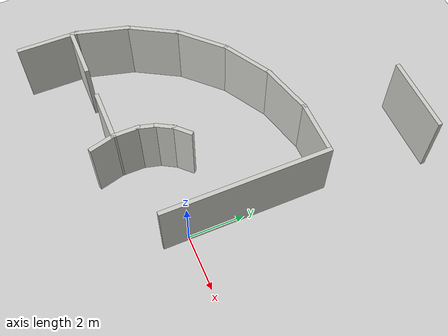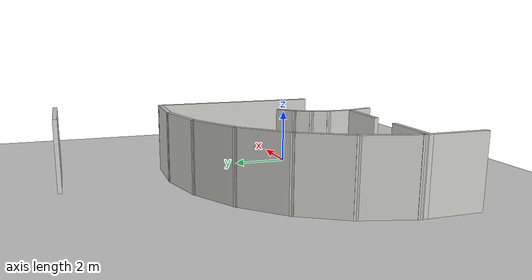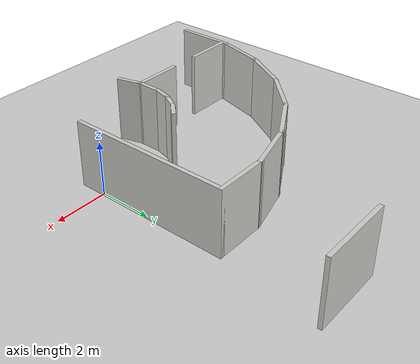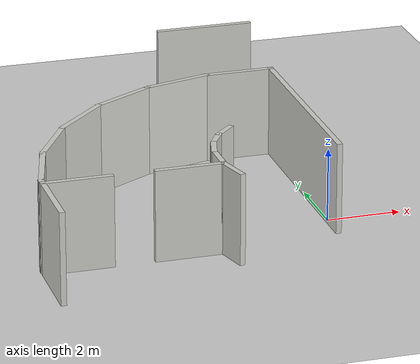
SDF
<sdf version="1.6">
 <world name="default">
  <model name="ground_plane">
   <static>1</static>
   <link name="link">
    <collision name="collision">
     <geometry><plane><normal>0 0 1</normal><size>100 100</size></plane></geometry>
     <surface>
      <contact><collide_bitmask>65535</collide_bitmask></contact>
      <friction><ode><mu>100</mu><mu2>50</mu2></ode></friction>
     </surface>
    </collision>
    <visual name="visual">
     <cast_shadows>0</cast_shadows>
     <geometry><plane><normal>0 0 1</normal><size>100 100</size></plane></geometry>
     <material>
      <script><uri>file://media/materials/scripts/gazebo.material</uri><name>Gazebo/Grey</name></script>
     </material>
    </visual>
   </link>
  </model>
  <model name="floor_plan">
   <link name="Wall_10">
    <pose>-8.27721 0.464854 0 0 0 -1.83257</pose>
    <visual name="Wall_10_Visual">
     <pose>0 0 1.25 0 -0 0</pose>
     <geometry><box><size>2 0.15 2.5</size></box></geometry>
     <material>
      <script><uri>file://media/materials/scripts/gazebo.material</uri><name>Gazebo/CeilingTiled</name></script>
      <ambient>1 1 1 1</ambient>
      <shader type="pixel"/>
     </material>
     <meta><layer>0</layer></meta>
    </visual>
    <collision name="Wall_10_Collision">
     <pose>0 0 1.25 0 -0 0</pose>
     <geometry><box><size>2 0.15 2.5</size></box></geometry>
     <surface>
      <friction>
       <ode><mu>1</mu><mu2>1</mu2><fdir1>0 0 0</fdir1><slip1>0</slip1><slip2>0</slip2></ode>
       <torsional>
        <coefficient>1</coefficient>
        <patch_radius>0</patch_radius>
        <surface_radius>0</surface_radius>
        <use_patch_radius>1</use_patch_radius>
        <ode><slip>0</slip></ode>
       </torsional>
      </friction>
      <bounce><restitution_coefficient>0</restitution_coefficient><threshold>1e+06</threshold></bounce>
      <contact>
       <collide_without_contact>0</collide_without_contact>
       <collide_without_contact_bitmask>1</collide_without_contact_bitmask>
       <collide_bitmask>1</collide_bitmask>
       <ode>
        <soft_cfm>0</soft_cfm>
        <soft_erp>0.2</soft_erp>
        <kp>1e+13</kp>
        <kd>1</kd>
        <max_vel>0.01</max_vel>
        <min_depth>0</min_depth>
       </ode>
       <bullet>
        <split_impulse>1</split_impulse>
        <split_impulse_penetration_threshold>-0.01</split_impulse_penetration_threshold>
        <soft_cfm>0</soft_cfm>
        <soft_erp>0.2</soft_erp>
        <kp>1e+13</kp>
        <kd>1</kd>
       </bullet>
      </contact>
     </surface>
    </collision>
   </link>
   <link name="Wall_12">
    <pose>-8.51658 -1.47859 0 0 0 -1.5708</pose>
    <visual name="Wall_12_Visual">
     <pose>0 0 1.25 0 -0 0</pose>
     <geometry><box><size>2.25 0.15 2.5</size></box></geometry>
     <material>
      <script><uri>file://media/materials/scripts/gazebo.material</uri><name>Gazebo/CeilingTiled</name></script>
      <ambient>1 1 1 1</ambient>
      <shader type="pixel"/>
     </material>
     <meta><layer>0</layer></meta>
    </visual>
    <collision name="Wall_12_Collision">
     <pose>0 0 1.25 0 -0 0</pose>
     <geometry><box><size>2.25 0.15 2.5</size></box></geometry>
     <surface>
      <friction>
       <ode><mu>1</mu><mu2>1</mu2><fdir1>0 0 0</fdir1><slip1>0</slip1><slip2>0</slip2></ode>
       <torsional>
        <coefficient>1</coefficient>
        <patch_radius>0</patch_radius>
        <surface_radius>0</surface_radius>
        <use_patch_radius>1</use_patch_radius>
        <ode><slip>0</slip></ode>
       </torsional>
      </friction>
      <bounce><restitution_coefficient>0</restitution_coefficient><threshold>1e+06</threshold></bounce>
      <contact>
       <collide_without_contact>0</collide_without_contact>
       <collide_without_contact_bitmask>1</collide_without_contact_bitmask>
       <collide_bitmask>1</collide_bitmask>
       <ode>
        <soft_cfm>0</soft_cfm>
        <soft_erp>0.2</soft_erp>
        <kp>1e+13</kp>
        <kd>1</kd>
        <max_vel>0.01</max_vel>
        <min_depth>0</min_depth>
       </ode>
       <bullet>
        <split_impulse>1</split_impulse>
        <split_impulse_penetration_threshold>-0.01</split_impulse_penetration_threshold>
        <soft_cfm>0</soft_cfm>
        <soft_erp>0.2</soft_erp>
        <kp>1e+13</kp>
        <kd>1</kd>
       </bullet>
      </contact>
     </surface>
    </collision>
   </link>
   <link name="Wall_2">
    <pose>-1.49058 5.67241 0 0 -0 0</pose>
    <visual name="Wall_2_Visual">
     <pose>0 0 1.25 0 -0 0</pose>
     <geometry><box><size>2 0.15 2.5</size></box></geometry>
     <material>
      <script><uri>file://media/materials/scripts/gazebo.material</uri><name>Gazebo/CeilingTiled</name></script>
      <ambient>1 1 1 1</ambient>
      <shader type="pixel"/>
     </material>
     <meta><layer>0</layer></meta>
    </visual>
    <collision name="Wall_2_Collision">
     <pose>0 0 1.25 0 -0 0</pose>
     <geometry><box><size>2 0.15 2.5</size></box></geometry>
     <surface>
      <friction>
       <ode><mu>1</mu><mu2>1</mu2><fdir1>0 0 0</fdir1><slip1>0</slip1><slip2>0</slip2></ode>
       <torsional>
        <coefficient>1</coefficient>
        <patch_radius>0</patch_radius>
        <surface_radius>0</surface_radius>
        <use_patch_radius>1</use_patch_radius>
        <ode><slip>0</slip></ode>
       </torsional>
      </friction>
      <bounce><restitution_coefficient>0</restitution_coefficient><threshold>1e+06</threshold></bounce>
      <contact>
       <collide_without_contact>0</collide_without_contact>
       <collide_without_contact_bitmask>1</collide_without_contact_bitmask>
       <collide_bitmask>1</collide_bitmask>
       <ode>
        <soft_cfm>0</soft_cfm>
        <soft_erp>0.2</soft_erp>
        <kp>1e+13</kp>
        <kd>1</kd>
        <max_vel>0.01</max_vel>
        <min_depth>0</min_depth>
       </ode>
       <bullet>
        <split_impulse>1</split_impulse>
        <split_impulse_penetration_threshold>-0.01</split_impulse_penetration_threshold>
        <soft_cfm>0</soft_cfm>
        <soft_erp>0.2</soft_erp>
        <kp>1e+13</kp>
        <kd>1</kd>
       </bullet>
      </contact>
     </surface>
    </collision>
   </link>
   <link name="Wall_4">
    <pose>-3.30906 5.433 0 0 0 -2.87979</pose>
    <visual name="Wall_4_Visual">
     <pose>0 0 1.25 0 -0 0</pose>
     <geometry><box><size>2 0.15 2.5</size></box></geometry>
     <material>
      <script><uri>file://media/materials/scripts/gazebo.material</uri><name>Gazebo/CeilingTiled</name></script>
      <ambient>1 1 1 1</ambient>
      <shader type="pixel"/>
     </material>
     <meta><layer>0</layer></meta>
    </visual>
    <collision name="Wall_4_Collision">
     <pose>0 0 1.25 0 -0 0</pose>
     <geometry><box><size>2 0.15 2.5</size></box></geometry>
     <surface>
      <friction>
       <ode><mu>1</mu><mu2>1</mu2><fdir1>0 0 0</fdir1><slip1>0</slip1><slip2>0</slip2></ode>
       <torsional>
        <coefficient>1</coefficient>
        <patch_radius>0</patch_radius>
        <surface_radius>0</surface_radius>
        <use_patch_radius>1</use_patch_radius>
        <ode><slip>0</slip></ode>
       </torsional>
      </friction>
      <bounce><restitution_coefficient>0</restitution_coefficient><threshold>1e+06</threshold></bounce>
      <contact>
       <collide_without_contact>0</collide_without_contact>
       <collide_without_contact_bitmask>1</collide_without_contact_bitmask>
       <collide_bitmask>1</collide_bitmask>
       <ode>
        <soft_cfm>0</soft_cfm>
        <soft_erp>0.2</soft_erp>
        <kp>1e+13</kp>
        <kd>1</kd>
        <max_vel>0.01</max_vel>
        <min_depth>0</min_depth>
       </ode>
       <bullet>
        <split_impulse>1</split_impulse>
        <split_impulse_penetration_threshold>-0.01</split_impulse_penetration_threshold>
        <soft_cfm>0</soft_cfm>
        <soft_erp>0.2</soft_erp>
        <kp>1e+13</kp>
        <kd>1</kd>
       </bullet>
      </contact>
     </surface>
    </collision>
   </link>
   <link name="Wall_41">
    <pose>-1.35791 9.46262 0 0 -0 3.14159</pose>
    <visual name="Wall_41_Visual">
     <pose>0 0 1.25 0 -0 0</pose>
     <geometry><box><size>2.75 0.15 2.5</size></box></geometry>
     <material>
      <script><uri>file://media/materials/scripts/gazebo.material</uri><name>Gazebo/CeilingTiled</name></script>
      <ambient>1 1 1 1</ambient>
      <shader type="pixel"/>
     </material>
     <meta><layer>0</layer></meta>
    </visual>
    <collision name="Wall_41_Collision">
     <pose>0 0 1.25 0 -0 0</pose>
     <geometry><box><size>2.75 0.15 2.5</size></box></geometry>
     <surface>
      <friction>
       <ode><mu>1</mu><mu2>1</mu2><fdir1>0 0 0</fdir1><slip1>0</slip1><slip2>0</slip2></ode>
       <torsional>
        <coefficient>1</coefficient>
        <patch_radius>0</patch_radius>
        <surface_radius>0</surface_radius>
        <use_patch_radius>1</use_patch_radius>
        <ode><slip>0</slip></ode>
       </torsional>
      </friction>
      <bounce><restitution_coefficient>0</restitution_coefficient><threshold>1e+06</threshold></bounce>
      <contact>
       <collide_without_contact>0</collide_without_contact>
       <collide_without_contact_bitmask>1</collide_without_contact_bitmask>
       <collide_bitmask>1</collide_bitmask>
       <ode>
        <soft_cfm>0</soft_cfm>
        <soft_erp>0.2</soft_erp>
        <kp>1e+13</kp>
        <kd>1</kd>
        <max_vel>0.01</max_vel>
        <min_depth>0</min_depth>
       </ode>
       <bullet>
        <split_impulse>1</split_impulse>
        <split_impulse_penetration_threshold>-0.01</split_impulse_penetration_threshold>
        <soft_cfm>0</soft_cfm>
        <soft_erp>0.2</soft_erp>
        <kp>1e+13</kp>
        <kd>1</kd>
       </bullet>
      </contact>
     </surface>
    </collision>
   </link>
   <link name="Wall_44">
    <pose>-0.565578 2.74741 0 0 0 -1.5708</pose>
    <visual name="Wall_44_Visual">
     <pose>0 0 1.25 0 -0 0</pose>
     <geometry><box><size>6 0.15 2.5</size></box></geometry>
     <material>
      <script><uri>file://media/materials/scripts/gazebo.material</uri><name>Gazebo/CeilingTiled</name></script>
      <ambient>1 1 1 1</ambient>
      <shader type="pixel"/>
     </material>
     <meta><layer>0</layer></meta>
    </visual>
    <collision name="Wall_44_Collision">
     <pose>0 0 1.25 0 -0 0</pose>
     <geometry><box><size>6 0.15 2.5</size></box></geometry>
     <surface>
      <friction>
       <ode><mu>1</mu><mu2>1</mu2><fdir1>0 0 0</fdir1><slip1>0</slip1><slip2>0</slip2></ode>
       <torsional>
        <coefficient>1</coefficient>
        <patch_radius>0</patch_radius>
        <surface_radius>0</surface_radius>
        <use_patch_radius>1</use_patch_radius>
        <ode><slip>0</slip></ode>
       </torsional>
      </friction>
      <bounce><restitution_coefficient>0</restitution_coefficient><threshold>1e+06</threshold></bounce>
      <contact>
       <collide_without_contact>0</collide_without_contact>
       <collide_without_contact_bitmask>1</collide_without_contact_bitmask>
       <collide_bitmask>1</collide_bitmask>
       <ode>
        <soft_cfm>0</soft_cfm>
        <soft_erp>0.2</soft_erp>
        <kp>1e+13</kp>
        <kd>1</kd>
        <max_vel>0.01</max_vel>
        <min_depth>0</min_depth>
       </ode>
       <bullet>
        <split_impulse>1</split_impulse>
        <split_impulse_penetration_threshold>-0.01</split_impulse_penetration_threshold>
        <soft_cfm>0</soft_cfm>
        <soft_erp>0.2</soft_erp>
        <kp>1e+13</kp>
        <kd>1</kd>
       </bullet>
      </contact>
     </surface>
    </collision>
   </link>
   <link name="Wall_5">
    <pose>-5.00361 4.73109 0 0 0 -2.61799</pose>
    <visual name="Wall_5_Visual">
     <pose>0 0 1.25 0 -0 0</pose>
     <geometry><box><size>2 0.15 2.5</size></box></geometry>
     <material>
      <script><uri>file://media/materials/scripts/gazebo.material</uri><name>Gazebo/CeilingTiled</name></script>
      <ambient>1 1 1 1</ambient>
      <shader type="pixel"/>
     </material>
     <meta><layer>0</layer></meta>
    </visual>
    <collision name="Wall_5_Collision">
     <pose>0 0 1.25 0 -0 0</pose>
     <geometry><box><size>2 0.15 2.5</size></box></geometry>
     <surface>
      <friction>
       <ode><mu>1</mu><mu2>1</mu2><fdir1>0 0 0</fdir1><slip1>0</slip1><slip2>0</slip2></ode>
       <torsional>
        <coefficient>1</coefficient>
        <patch_radius>0</patch_radius>
        <surface_radius>0</surface_radius>
        <use_patch_radius>1</use_patch_radius>
        <ode><slip>0</slip></ode>
       </torsional>
      </friction>
      <bounce><restitution_coefficient>0</restitution_coefficient><threshold>1e+06</threshold></bounce>
      <contact>
       <collide_without_contact>0</collide_without_contact>
       <collide_without_contact_bitmask>1</collide_without_contact_bitmask>
       <collide_bitmask>1</collide_bitmask>
       <ode>
        <soft_cfm>0</soft_cfm>
        <soft_erp>0.2</soft_erp>
        <kp>1e+13</kp>
        <kd>1</kd>
        <max_vel>0.01</max_vel>
        <min_depth>0</min_depth>
       </ode>
       <bullet>
        <split_impulse>1</split_impulse>
        <split_impulse_penetration_threshold>-0.01</split_impulse_penetration_threshold>
        <soft_cfm>0</soft_cfm>
        <soft_erp>0.2</soft_erp>
        <kp>1e+13</kp>
        <kd>1</kd>
       </bullet>
      </contact>
     </surface>
    </collision>
   </link>
   <link name="Wall_51">
    <pose>-3.79458 -0.177591 0 0 0 -1.5708</pose>
    <visual name="Wall_51_Visual">
     <pose>0 0 1.25 0 -0 0</pose>
     <geometry><box><size>1 0.15 2.5</size></box></geometry>
     <material>
      <script><uri>file://media/materials/scripts/gazebo.material</uri><name>Gazebo/CeilingTiled</name></script>
      <ambient>1 1 1 1</ambient>
      <shader type="pixel"/>
     </material>
     <meta><layer>0</layer></meta>
    </visual>
    <collision name="Wall_51_Collision">
     <pose>0 0 1.25 0 -0 0</pose>
     <geometry><box><size>1 0.15 2.5</size></box></geometry>
     <surface>
      <friction>
       <ode><mu>1</mu><mu2>1</mu2><fdir1>0 0 0</fdir1><slip1>0</slip1><slip2>0</slip2></ode>
       <torsional>
        <coefficient>1</coefficient>
        <patch_radius>0</patch_radius>
        <surface_radius>0</surface_radius>
        <use_patch_radius>1</use_patch_radius>
        <ode><slip>0</slip></ode>
       </torsional>
      </friction>
      <bounce><restitution_coefficient>0</restitution_coefficient><threshold>1e+06</threshold></bounce>
      <contact>
       <collide_without_contact>0</collide_without_contact>
       <collide_without_contact_bitmask>1</collide_without_contact_bitmask>
       <collide_bitmask>1</collide_bitmask>
       <ode>
        <soft_cfm>0</soft_cfm>
        <soft_erp>0.2</soft_erp>
        <kp>1e+13</kp>
        <kd>1</kd>
        <max_vel>0.01</max_vel>
        <min_depth>0</min_depth>
       </ode>
       <bullet>
        <split_impulse>1</split_impulse>
        <split_impulse_penetration_threshold>-0.01</split_impulse_penetration_threshold>
        <soft_cfm>0</soft_cfm>
        <soft_erp>0.2</soft_erp>
        <kp>1e+13</kp>
        <kd>1</kd>
       </bullet>
      </contact>
     </surface>
    </collision>
   </link>
   <link name="Wall_52">
    <pose>-3.68458 -1.01311 0 0 0 -1.309</pose>
    <visual name="Wall_52_Visual">
     <pose>0 0 1.25 0 -0 0</pose>
     <geometry><box><size>1 0.15 2.5</size></box></geometry>
     <material>
      <script><uri>file://media/materials/scripts/gazebo.material</uri><name>Gazebo/CeilingTiled</name></script>
      <ambient>1 1 1 1</ambient>
      <shader type="pixel"/>
     </material>
     <meta><layer>0</layer></meta>
    </visual>
    <collision name="Wall_52_Collision">
     <pose>0 0 1.25 0 -0 0</pose>
     <geometry><box><size>1 0.15 2.5</size></box></geometry>
     <surface>
      <friction>
       <ode><mu>1</mu><mu2>1</mu2><fdir1>0 0 0</fdir1><slip1>0</slip1><slip2>0</slip2></ode>
       <torsional>
        <coefficient>1</coefficient>
        <patch_radius>0</patch_radius>
        <surface_radius>0</surface_radius>
        <use_patch_radius>1</use_patch_radius>
        <ode><slip>0</slip></ode>
       </torsional>
      </friction>
      <bounce><restitution_coefficient>0</restitution_coefficient><threshold>1e+06</threshold></bounce>
      <contact>
       <collide_without_contact>0</collide_without_contact>
       <collide_without_contact_bitmask>1</collide_without_contact_bitmask>
       <collide_bitmask>1</collide_bitmask>
       <ode>
        <soft_cfm>0</soft_cfm>
        <soft_erp>0.2</soft_erp>
        <kp>1e+13</kp>
        <kd>1</kd>
        <max_vel>0.01</max_vel>
        <min_depth>0</min_depth>
       </ode>
       <bullet>
        <split_impulse>1</split_impulse>
        <split_impulse_penetration_threshold>-0.01</split_impulse_penetration_threshold>
        <soft_cfm>0</soft_cfm>
        <soft_erp>0.2</soft_erp>
        <kp>1e+13</kp>
        <kd>1</kd>
       </bullet>
      </contact>
     </surface>
    </collision>
   </link>
   <link name="Wall_60">
    <pose>-3.71693 0.537187 0 0 -0 1.309</pose>
    <visual name="Wall_60_Visual">
     <pose>0 0 1.25 0 -0 0</pose>
     <geometry><box><size>0.75 0.15 2.5</size></box></geometry>
     <material>
      <script><uri>file://media/materials/scripts/gazebo.material</uri><name>Gazebo/CeilingTiled</name></script>
      <ambient>1 1 1 1</ambient>
      <shader type="pixel"/>
     </material>
     <meta><layer>0</layer></meta>
    </visual>
    <collision name="Wall_60_Collision">
     <pose>0 0 1.25 0 -0 0</pose>
     <geometry><box><size>0.75 0.15 2.5</size></box></geometry>
     <surface>
      <friction>
       <ode><mu>1</mu><mu2>1</mu2><fdir1>0 0 0</fdir1><slip1>0</slip1><slip2>0</slip2></ode>
       <torsional>
        <coefficient>1</coefficient>
        <patch_radius>0</patch_radius>
        <surface_radius>0</surface_radius>
        <use_patch_radius>1</use_patch_radius>
        <ode><slip>0</slip></ode>
       </torsional>
      </friction>
      <bounce><restitution_coefficient>0</restitution_coefficient><threshold>1e+06</threshold></bounce>
      <contact>
       <collide_without_contact>0</collide_without_contact>
       <collide_without_contact_bitmask>1</collide_without_contact_bitmask>
       <collide_bitmask>1</collide_bitmask>
       <ode>
        <soft_cfm>0</soft_cfm>
        <soft_erp>0.2</soft_erp>
        <kp>1e+13</kp>
        <kd>1</kd>
        <max_vel>0.01</max_vel>
        <min_depth>0</min_depth>
       </ode>
       <bullet>
        <split_impulse>1</split_impulse>
        <split_impulse_penetration_threshold>-0.01</split_impulse_penetration_threshold>
        <soft_cfm>0</soft_cfm>
        <soft_erp>0.2</soft_erp>
        <kp>1e+13</kp>
        <kd>1</kd>
       </bullet>
      </contact>
     </surface>
    </collision>
   </link>
   <link name="Wall_61">
    <pose>-3.48929 1.08677 0 0 -0 1.0472</pose>
    <visual name="Wall_61_Visual">
     <pose>0 0 1.25 0 -0 0</pose>
     <geometry><box><size>0.75 0.15 2.5</size></box></geometry>
     <material>
      <script><uri>file://media/materials/scripts/gazebo.material</uri><name>Gazebo/CeilingTiled</name></script>
      <ambient>1 1 1 1</ambient>
      <shader type="pixel"/>
     </material>
     <meta><layer>0</layer></meta>
    </visual>
    <collision name="Wall_61_Collision">
     <pose>0 0 1.25 0 -0 0</pose>
     <geometry><box><size>0.75 0.15 2.5</size></box></geometry>
     <surface>
      <friction>
       <ode><mu>1</mu><mu2>1</mu2><fdir1>0 0 0</fdir1><slip1>0</slip1><slip2>0</slip2></ode>
       <torsional>
        <coefficient>1</coefficient>
        <patch_radius>0</patch_radius>
        <surface_radius>0</surface_radius>
        <use_patch_radius>1</use_patch_radius>
        <ode><slip>0</slip></ode>
       </torsional>
      </friction>
      <bounce><restitution_coefficient>0</restitution_coefficient><threshold>1e+06</threshold></bounce>
      <contact>
       <collide_without_contact>0</collide_without_contact>
       <collide_without_contact_bitmask>1</collide_without_contact_bitmask>
       <collide_bitmask>1</collide_bitmask>
       <ode>
        <soft_cfm>0</soft_cfm>
        <soft_erp>0.2</soft_erp>
        <kp>1e+13</kp>
        <kd>1</kd>
        <max_vel>0.01</max_vel>
        <min_depth>0</min_depth>
       </ode>
       <bullet>
        <split_impulse>1</split_impulse>
        <split_impulse_penetration_threshold>-0.01</split_impulse_penetration_threshold>
        <soft_cfm>0</soft_cfm>
        <soft_erp>0.2</soft_erp>
        <kp>1e+13</kp>
        <kd>1</kd>
       </bullet>
      </contact>
     </surface>
    </collision>
   </link>
   <link name="Wall_62">
    <pose>-3.12716 1.55871 0 0 -0 0.785398</pose>
    <visual name="Wall_62_Visual">
     <pose>0 0 1.25 0 -0 0</pose>
     <geometry><box><size>0.75 0.15 2.5</size></box></geometry>
     <material>
      <script><uri>file://media/materials/scripts/gazebo.material</uri><name>Gazebo/CeilingTiled</name></script>
      <ambient>1 1 1 1</ambient>
      <shader type="pixel"/>
     </material>
     <meta><layer>0</layer></meta>
    </visual>
    <collision name="Wall_62_Collision">
     <pose>0 0 1.25 0 -0 0</pose>
     <geometry><box><size>0.75 0.15 2.5</size></box></geometry>
     <surface>
      <friction>
       <ode><mu>1</mu><mu2>1</mu2><fdir1>0 0 0</fdir1><slip1>0</slip1><slip2>0</slip2></ode>
       <torsional>
        <coefficient>1</coefficient>
        <patch_radius>0</patch_radius>
        <surface_radius>0</surface_radius>
        <use_patch_radius>1</use_patch_radius>
        <ode><slip>0</slip></ode>
       </torsional>
      </friction>
      <bounce><restitution_coefficient>0</restitution_coefficient><threshold>1e+06</threshold></bounce>
      <contact>
       <collide_without_contact>0</collide_without_contact>
       <collide_without_contact_bitmask>1</collide_without_contact_bitmask>
       <collide_bitmask>1</collide_bitmask>
       <ode>
        <soft_cfm>0</soft_cfm>
        <soft_erp>0.2</soft_erp>
        <kp>1e+13</kp>
        <kd>1</kd>
        <max_vel>0.01</max_vel>
        <min_depth>0</min_depth>
       </ode>
       <bullet>
        <split_impulse>1</split_impulse>
        <split_impulse_penetration_threshold>-0.01</split_impulse_penetration_threshold>
        <soft_cfm>0</soft_cfm>
        <soft_erp>0.2</soft_erp>
        <kp>1e+13</kp>
        <kd>1</kd>
       </bullet>
      </contact>
     </surface>
    </collision>
   </link>
   <link name="Wall_7">
    <pose>-6.45876 3.61452 0 0 0 -2.35619</pose>
    <visual name="Wall_7_Visual">
     <pose>0 0 1.25 0 -0 0</pose>
     <geometry><box><size>2 0.15 2.5</size></box></geometry>
     <material>
      <script><uri>file://media/materials/scripts/gazebo.material</uri><name>Gazebo/CeilingTiled</name></script>
      <ambient>1 1 1 1</ambient>
      <shader type="pixel"/>
     </material>
     <meta><layer>0</layer></meta>
    </visual>
    <collision name="Wall_7_Collision">
     <pose>0 0 1.25 0 -0 0</pose>
     <geometry><box><size>2 0.15 2.5</size></box></geometry>
     <surface>
      <friction>
       <ode><mu>1</mu><mu2>1</mu2><fdir1>0 0 0</fdir1><slip1>0</slip1><slip2>0</slip2></ode>
       <torsional>
        <coefficient>1</coefficient>
        <patch_radius>0</patch_radius>
        <surface_radius>0</surface_radius>
        <use_patch_radius>1</use_patch_radius>
        <ode><slip>0</slip></ode>
       </torsional>
      </friction>
      <bounce><restitution_coefficient>0</restitution_coefficient><threshold>1e+06</threshold></bounce>
      <contact>
       <collide_without_contact>0</collide_without_contact>
       <collide_without_contact_bitmask>1</collide_without_contact_bitmask>
       <collide_bitmask>1</collide_bitmask>
       <ode>
        <soft_cfm>0</soft_cfm>
        <soft_erp>0.2</soft_erp>
        <kp>1e+13</kp>
        <kd>1</kd>
        <max_vel>0.01</max_vel>
        <min_depth>0</min_depth>
       </ode>
       <bullet>
        <split_impulse>1</split_impulse>
        <split_impulse_penetration_threshold>-0.01</split_impulse_penetration_threshold>
        <soft_cfm>0</soft_cfm>
        <soft_erp>0.2</soft_erp>
        <kp>1e+13</kp>
        <kd>1</kd>
       </bullet>
      </contact>
     </surface>
    </collision>
   </link>
   <link name="Wall_8">
    <pose>-7.57534 2.15937 0 0 0 -2.0944</pose>
    <visual name="Wall_8_Visual">
     <pose>0 0 1.25 0 -0 0</pose>
     <geometry><box><size>2 0.15 2.5</size></box></geometry>
     <material>
      <script><uri>file://media/materials/scripts/gazebo.material</uri><name>Gazebo/CeilingTiled</name></script>
      <ambient>1 1 1 1</ambient>
      <shader type="pixel"/>
     </material>
     <meta><layer>0</layer></meta>
    </visual>
    <collision name="Wall_8_Collision">
     <pose>0 0 1.25 0 -0 0</pose>
     <geometry><box><size>2 0.15 2.5</size></box></geometry>
     <surface>
      <friction>
       <ode><mu>1</mu><mu2>1</mu2><fdir1>0 0 0</fdir1><slip1>0</slip1><slip2>0</slip2></ode>
       <torsional>
        <coefficient>1</coefficient>
        <patch_radius>0</patch_radius>
        <surface_radius>0</surface_radius>
        <use_patch_radius>1</use_patch_radius>
        <ode><slip>0</slip></ode>
       </torsional>
      </friction>
      <bounce><restitution_coefficient>0</restitution_coefficient><threshold>1e+06</threshold></bounce>
      <contact>
       <collide_without_contact>0</collide_without_contact>
       <collide_without_contact_bitmask>1</collide_without_contact_bitmask>
       <collide_bitmask>1</collide_bitmask>
       <ode>
        <soft_cfm>0</soft_cfm>
        <soft_erp>0.2</soft_erp>
        <kp>1e+13</kp>
        <kd>1</kd>
        <max_vel>0.01</max_vel>
        <min_depth>0</min_depth>
       </ode>
       <bullet>
        <split_impulse>1</split_impulse>
        <split_impulse_penetration_threshold>-0.01</split_impulse_penetration_threshold>
        <soft_cfm>0</soft_cfm>
        <soft_erp>0.2</soft_erp>
        <kp>1e+13</kp>
        <kd>1</kd>
       </bullet>
      </contact>
     </surface>
    </collision>
   </link>
   <link name="Wall_82">
    <pose>-7.63933 -0.602591 0 0 -0 0</pose>
    <visual name="Wall_82_Visual">
     <pose>0 0 1.25 0 -0 0</pose>
     <geometry><box><size>1.9045 0.15 2.5</size></box></geometry>
     <material>
      <script><uri>file://media/materials/scripts/gazebo.material</uri><name>Gazebo/CeilingTiled</name></script>
      <ambient>1 1 1 1</ambient>
      <shader type="pixel"/>
     </material>
     <meta><layer>0</layer></meta>
    </visual>
    <collision name="Wall_82_Collision">
     <pose>0 0 1.25 0 -0 0</pose>
     <geometry><box><size>1.9045 0.15 2.5</size></box></geometry>
     <surface>
      <friction>
       <ode><mu>1</mu><mu2>1</mu2><fdir1>0 0 0</fdir1><slip1>0</slip1><slip2>0</slip2></ode>
       <torsional>
        <coefficient>1</coefficient>
        <patch_radius>0</patch_radius>
        <surface_radius>0</surface_radius>
        <use_patch_radius>1</use_patch_radius>
        <ode><slip>0</slip></ode>
       </torsional>
      </friction>
      <bounce><restitution_coefficient>0</restitution_coefficient><threshold>1e+06</threshold></bounce>
      <contact>
       <collide_without_contact>0</collide_without_contact>
       <collide_without_contact_bitmask>1</collide_without_contact_bitmask>
       <collide_bitmask>1</collide_bitmask>
       <ode>
        <soft_cfm>0</soft_cfm>
        <soft_erp>0.2</soft_erp>
        <kp>1e+13</kp>
        <kd>1</kd>
        <max_vel>0.01</max_vel>
        <min_depth>0</min_depth>
       </ode>
       <bullet>
        <split_impulse>1</split_impulse>
        <split_impulse_penetration_threshold>-0.01</split_impulse_penetration_threshold>
        <soft_cfm>0</soft_cfm>
        <soft_erp>0.2</soft_erp>
        <kp>1e+13</kp>
        <kd>1</kd>
       </bullet>
      </contact>
     </surface>
    </collision>
   </link>
   <link name="Wall_84">
    <pose>-4.67183 -0.602591 0 0 -0 3.14159</pose>
    <visual name="Wall_84_Visual">
     <pose>0 0 1.25 0 -0 0</pose>
     <geometry><box><size>1.9045 0.15 2.5</size></box></geometry>
     <material>
      <script><uri>file://media/materials/scripts/gazebo.material</uri><name>Gazebo/CeilingTiled</name></script>
      <ambient>1 1 1 1</ambient>
      <shader type="pixel"/>
     </material>
     <meta><layer>0</layer></meta>
    </visual>
    <collision name="Wall_84_Collision">
     <pose>0 0 1.25 0 -0 0</pose>
     <geometry><box><size>1.9045 0.15 2.5</size></box></geometry>
     <surface>
      <friction>
       <ode><mu>1</mu><mu2>1</mu2><fdir1>0 0 0</fdir1><slip1>0</slip1><slip2>0</slip2></ode>
       <torsional>
        <coefficient>1</coefficient>
        <patch_radius>0</patch_radius>
        <surface_radius>0</surface_radius>
        <use_patch_radius>1</use_patch_radius>
        <ode><slip>0</slip></ode>
       </torsional>
      </friction>
      <bounce><restitution_coefficient>0</restitution_coefficient><threshold>1e+06</threshold></bounce>
      <contact>
       <collide_without_contact>0</collide_without_contact>
       <collide_without_contact_bitmask>1</collide_without_contact_bitmask>
       <collide_bitmask>1</collide_bitmask>
       <ode>
        <soft_cfm>0</soft_cfm>
        <soft_erp>0.2</soft_erp>
        <kp>1e+13</kp>
        <kd>1</kd>
        <max_vel>0.01</max_vel>
        <min_depth>0</min_depth>
       </ode>
       <bullet>
        <split_impulse>1</split_impulse>
        <split_impulse_penetration_threshold>-0.01</split_impulse_penetration_threshold>
        <soft_cfm>0</soft_cfm>
        <soft_erp>0.2</soft_erp>
        <kp>1e+13</kp>
        <kd>1</kd>
       </bullet>
      </contact>
     </surface>
    </collision>
   </link>
   <static>1</static>
   <pose>0.565578 -0.672409 0 0 -0 0</pose>
  </model>
 </world>
</sdf>
